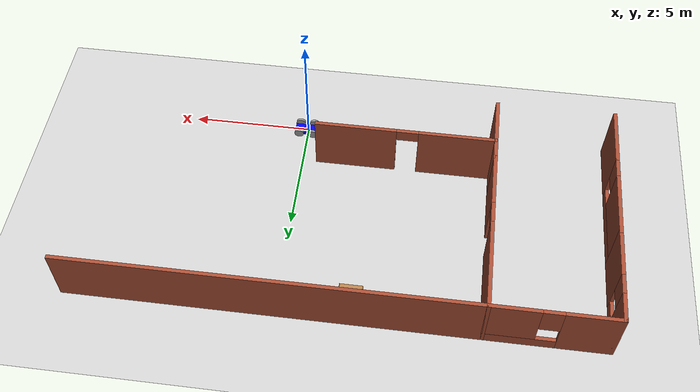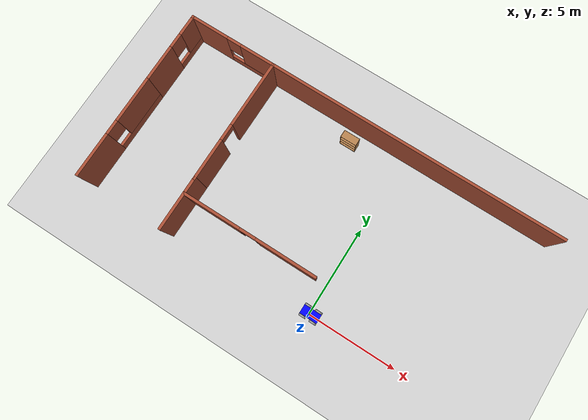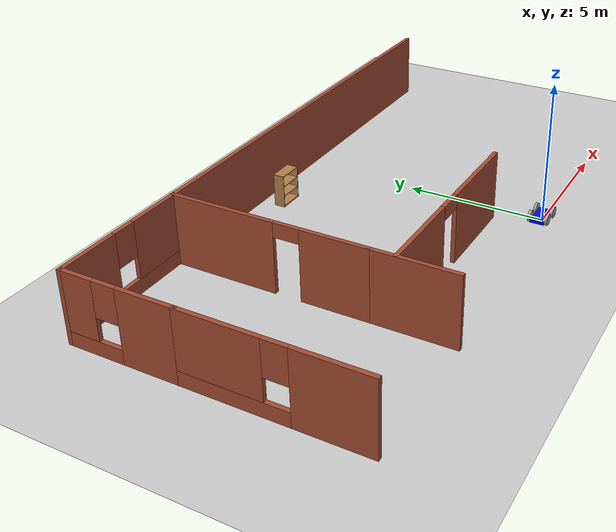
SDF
<sdf version="1.6">
 <world name="default">
  <model name="ground_plane">
   <static>1</static>
   <link name="link">
    <collision name="collision">
     <geometry><plane><normal>0 0 1</normal><size>100 100</size></plane></geometry>
     <surface>
      <contact><collide_bitmask>65535</collide_bitmask></contact>
      <friction><ode><mu>100</mu><mu2>50</mu2></ode></friction>
     </surface>
    </collision>
    <visual name="visual">
     <cast_shadows>0</cast_shadows>
     <geometry><plane><normal>0 0 1</normal><size>100 100</size></plane></geometry>
     <material>
      <script><uri>file://media/materials/scripts/gazebo.material</uri><name>Gazebo/Grey</name></script>
     </material>
    </visual>
   </link>
  </model>
  <model name="office">
   <pose>2.35048 -0.469027 0 0 -0 0</pose>
   <link name="Wall_0">
    <pose>-12.8016 9.8293 0 0 -0 1.2e-05</pose>
    <visual name="Wall_0_Visual_0">
     <pose>-1.40419 0 1.25 0 -0 0</pose>
     <geometry><box><size>2.19162 0.15 2.5</size></box></geometry>
     <material>
      <script><uri>file://media/materials/scripts/gazebo.material</uri><name>Gazebo/Bricks</name></script>
      <ambient>1 1 1 1</ambient>
     </material>
     <meta><layer>0</layer></meta>
    </visual>
    <collision name="Wall_0_Collision_0">
     <geometry><box><size>2.19162 0.15 2.5</size></box></geometry>
     <pose>-1.40419 0 1.25 0 -0 0</pose>
    </collision>
    <visual name="Wall_0_Visual_1">
     <pose>1.09581 0 0.25 0 -0 0</pose>
     <geometry><box><size>2.80838 0.15 0.5</size></box></geometry>
     <material>
      <script><uri>file://media/materials/scripts/gazebo.material</uri><name>Gazebo/Bricks</name></script>
      <ambient>1 1 1 1</ambient>
     </material>
     <meta><layer>0</layer></meta>
    </visual>
    <collision name="Wall_0_Collision_1">
     <geometry><box><size>2.80838 0.15 0.5</size></box></geometry>
     <pose>1.09581 0 0.25 0 -0 0</pose>
    </collision>
    <visual name="Wall_0_Visual_2">
     <pose>1.49581 0 1.5 0 -0 0</pose>
     <geometry><box><size>2.00839 0.15 2</size></box></geometry>
     <material>
      <script><uri>file://media/materials/scripts/gazebo.material</uri><name>Gazebo/Bricks</name></script>
      <ambient>1 1 1 1</ambient>
     </material>
     <meta><layer>0</layer></meta>
    </visual>
    <collision name="Wall_0_Collision_2">
     <geometry><box><size>2.00839 0.15 2</size></box></geometry>
     <pose>1.49581 0 1.5 0 -0 0</pose>
    </collision>
    <visual name="Wall_0_Visual_3">
     <pose>0.091615 0 1.9 0 -0 0</pose>
     <geometry><box><size>0.8 0.15 1.2</size></box></geometry>
     <material>
      <script><uri>file://media/materials/scripts/gazebo.material</uri><name>Gazebo/Bricks</name></script>
      <ambient>1 1 1 1</ambient>
     </material>
     <meta><layer>0</layer></meta>
    </visual>
    <collision name="Wall_0_Collision_3">
     <geometry><box><size>0.8 0.15 1.2</size></box></geometry>
     <pose>0.091615 0 1.9 0 -0 0</pose>
    </collision>
   </link>
   <link name="Wall_1">
    <pose>-10.3767 6.40433 0 0 0 -1.5708</pose>
    <visual name="Wall_1_Visual_0">
     <pose>-1.61827 0 1.25 0 -0 0</pose>
     <geometry><box><size>3.76346 0.15 2.5</size></box></geometry>
     <material>
      <script><uri>file://media/materials/scripts/gazebo.material</uri><name>Gazebo/Bricks</name></script>
      <ambient>0 0 1 1</ambient>
     </material>
     <meta><layer>0</layer></meta>
    </visual>
    <collision name="Wall_1_Collision_0">
     <geometry><box><size>3.76346 0.15 2.5</size></box></geometry>
     <pose>-1.61827 0 1.25 0 -0 0</pose>
    </collision>
    <visual name="Wall_1_Visual_1">
     <pose>2.33173 0 1.25 0 -0 0</pose>
     <geometry><box><size>2.33654 0.15 2.5</size></box></geometry>
     <material>
      <script><uri>file://media/materials/scripts/gazebo.material</uri><name>Gazebo/Bricks</name></script>
      <ambient>0 0 1 1</ambient>
     </material>
     <meta><layer>0</layer></meta>
    </visual>
    <collision name="Wall_1_Collision_1">
     <geometry><box><size>2.33654 0.15 2.5</size></box></geometry>
     <pose>2.33173 0 1.25 0 -0 0</pose>
    </collision>
    <visual name="Wall_1_Visual_2">
     <pose>0.713457 0 2.25 0 -0 0</pose>
     <geometry><box><size>0.9 0.15 0.5</size></box></geometry>
     <material>
      <script><uri>file://media/materials/scripts/gazebo.material</uri><name>Gazebo/Bricks</name></script>
      <ambient>0 0 1 1</ambient>
     </material>
     <meta><layer>0</layer></meta>
    </visual>
    <collision name="Wall_1_Collision_2">
     <geometry><box><size>0.9 0.15 0.5</size></box></geometry>
     <pose>0.713457 0 2.25 0 -0 0</pose>
    </collision>
   </link>
   <link name="Wall_12">
    <pose>-6.67828 2.11448 0 0 -0 3.14159</pose>
    <visual name="Wall_12_Visual_0">
     <pose>-2.05802 0 1.25 0 -0 0</pose>
     <geometry><box><size>3.38397 0.15 2.5</size></box></geometry>
     <material>
      <script><uri>file://media/materials/scripts/gazebo.material</uri><name>Gazebo/Bricks</name></script>
      <ambient>0 0 1 1</ambient>
     </material>
     <meta><layer>0</layer></meta>
    </visual>
    <collision name="Wall_12_Collision_0">
     <geometry><box><size>3.38397 0.15 2.5</size></box></geometry>
     <pose>-2.05802 0 1.25 0 -0 0</pose>
    </collision>
    <visual name="Wall_12_Visual_1">
     <pose>2.14199 0 1.25 0 -0 0</pose>
     <geometry><box><size>3.21603 0.15 2.5</size></box></geometry>
     <material>
      <script><uri>file://media/materials/scripts/gazebo.material</uri><name>Gazebo/Bricks</name></script>
      <ambient>0 0 1 1</ambient>
     </material>
     <meta><layer>0</layer></meta>
    </visual>
    <collision name="Wall_12_Collision_1">
     <geometry><box><size>3.21603 0.15 2.5</size></box></geometry>
     <pose>2.14199 0 1.25 0 -0 0</pose>
    </collision>
    <visual name="Wall_12_Visual_2">
     <pose>0.083969 0 2.25 0 -0 0</pose>
     <geometry><box><size>0.9 0.15 0.5</size></box></geometry>
     <material>
      <script><uri>file://media/materials/scripts/gazebo.material</uri><name>Gazebo/Bricks</name></script>
      <ambient>0 0 1 1</ambient>
     </material>
     <meta><layer>0</layer></meta>
    </visual>
    <collision name="Wall_12_Collision_2">
     <geometry><box><size>0.9 0.15 0.5</size></box></geometry>
     <pose>0.083969 0 2.25 0 -0 0</pose>
    </collision>
   </link>
   <link name="Wall_14">
    <collision name="Wall_14_Collision">
     <geometry><box><size>16.5 0.15 2.5</size></box></geometry>
     <pose>0 0 1.25 0 -0 0</pose>
    </collision>
    <visual name="Wall_14_Visual">
     <pose>0 0 1.25 0 -0 0</pose>
     <geometry><box><size>16.5 0.15 2.5</size></box></geometry>
     <material>
      <script><uri>file://media/materials/scripts/gazebo.material</uri><name>Gazebo/Bricks</name></script>
      <ambient>1 1 1 1</ambient>
     </material>
     <meta><layer>0</layer></meta>
    </visual>
    <pose>-2.20168 9.82933 0 0 -0 0</pose>
   </link>
   <link name="Wall_2">
    <collision name="Wall_2_Collision">
     <geometry><box><size>3 0.15 2.5</size></box></geometry>
     <pose>0 0 1.25 0 -0 0</pose>
    </collision>
    <visual name="Wall_2_Visual">
     <pose>0 0 1.25 0 -0 0</pose>
     <geometry><box><size>3 0.15 2.5</size></box></geometry>
     <material>
      <script><uri>file://media/materials/scripts/gazebo.material</uri><name>Gazebo/Bricks</name></script>
      <ambient>0 0 1 1</ambient>
     </material>
     <meta><layer>0</layer></meta>
    </visual>
    <pose>-10.3766 1.5543 0 0 0 -1.57073</pose>
   </link>
   <link name="Wall_4">
    <pose>-15.2265 3.05427 0 0 -0 1.5708</pose>
    <visual name="Wall_4_Visual_0">
     <pose>-1.76494 0 1.25 0 -0 0</pose>
     <geometry><box><size>2.47012 0.15 2.5</size></box></geometry>
     <material>
      <script><uri>file://media/materials/scripts/gazebo.material</uri><name>Gazebo/Bricks</name></script>
      <ambient>1 1 1 1</ambient>
     </material>
     <meta><layer>0</layer></meta>
    </visual>
    <collision name="Wall_4_Collision_0">
     <geometry><box><size>2.47012 0.15 2.5</size></box></geometry>
     <pose>-1.76494 0 1.25 0 -0 0</pose>
    </collision>
    <visual name="Wall_4_Visual_1">
     <pose>1.23506 0 0.25 0 -0 0</pose>
     <geometry><box><size>3.52988 0.15 0.5</size></box></geometry>
     <material>
      <script><uri>file://media/materials/scripts/gazebo.material</uri><name>Gazebo/Bricks</name></script>
      <ambient>1 1 1 1</ambient>
     </material>
     <meta><layer>0</layer></meta>
    </visual>
    <collision name="Wall_4_Collision_1">
     <geometry><box><size>3.52988 0.15 0.5</size></box></geometry>
     <pose>1.23506 0 0.25 0 -0 0</pose>
    </collision>
    <visual name="Wall_4_Visual_2">
     <pose>1.63506 0 1.5 0 -0 0</pose>
     <geometry><box><size>2.72988 0.15 2</size></box></geometry>
     <material>
      <script><uri>file://media/materials/scripts/gazebo.material</uri><name>Gazebo/Bricks</name></script>
      <ambient>1 1 1 1</ambient>
     </material>
     <meta><layer>0</layer></meta>
    </visual>
    <collision name="Wall_4_Collision_2">
     <geometry><box><size>2.72988 0.15 2</size></box></geometry>
     <pose>1.63506 0 1.5 0 -0 0</pose>
    </collision>
    <visual name="Wall_4_Visual_3">
     <pose>-0.129878 0 1.9 0 -0 0</pose>
     <geometry><box><size>0.8 0.15 1.2</size></box></geometry>
     <material>
      <script><uri>file://media/materials/scripts/gazebo.material</uri><name>Gazebo/Bricks</name></script>
      <ambient>1 1 1 1</ambient>
     </material>
     <meta><layer>0</layer></meta>
    </visual>
    <collision name="Wall_4_Collision_3">
     <geometry><box><size>0.8 0.15 1.2</size></box></geometry>
     <pose>-0.129878 0 1.9 0 -0 0</pose>
    </collision>
   </link>
   <link name="Wall_5">
    <pose>-15.2265 7.90427 0 0 -0 1.5708</pose>
    <visual name="Wall_5_Visual_0">
     <pose>-1.00332 0 1.25 0 -0 0</pose>
     <geometry><box><size>1.99336 0.15 2.5</size></box></geometry>
     <material>
      <script><uri>file://media/materials/scripts/gazebo.material</uri><name>Gazebo/Bricks</name></script>
      <ambient>1 1 1 1</ambient>
     </material>
     <meta><layer>0</layer></meta>
    </visual>
    <collision name="Wall_5_Collision_0">
     <geometry><box><size>1.99336 0.15 2.5</size></box></geometry>
     <pose>-1.00332 0 1.25 0 -0 0</pose>
    </collision>
    <visual name="Wall_5_Visual_1">
     <pose>0.996681 0 0.25 0 -0 0</pose>
     <geometry><box><size>2.00664 0.15 0.5</size></box></geometry>
     <material>
      <script><uri>file://media/materials/scripts/gazebo.material</uri><name>Gazebo/Bricks</name></script>
      <ambient>1 1 1 1</ambient>
     </material>
     <meta><layer>0</layer></meta>
    </visual>
    <collision name="Wall_5_Collision_1">
     <geometry><box><size>2.00664 0.15 0.5</size></box></geometry>
     <pose>0.996681 0 0.25 0 -0 0</pose>
    </collision>
    <visual name="Wall_5_Visual_2">
     <pose>1.39668 0 1.5 0 -0 0</pose>
     <geometry><box><size>1.20664 0.15 2</size></box></geometry>
     <material>
      <script><uri>file://media/materials/scripts/gazebo.material</uri><name>Gazebo/Bricks</name></script>
      <ambient>1 1 1 1</ambient>
     </material>
     <meta><layer>0</layer></meta>
    </visual>
    <collision name="Wall_5_Collision_2">
     <geometry><box><size>1.20664 0.15 2</size></box></geometry>
     <pose>1.39668 0 1.5 0 -0 0</pose>
    </collision>
    <visual name="Wall_5_Visual_3">
     <pose>0.393363 0 1.9 0 -0 0</pose>
     <geometry><box><size>0.8 0.15 1.2</size></box></geometry>
     <material>
      <script><uri>file://media/materials/scripts/gazebo.material</uri><name>Gazebo/Bricks</name></script>
      <ambient>1 1 1 1</ambient>
     </material>
     <meta><layer>0</layer></meta>
    </visual>
    <collision name="Wall_5_Collision_3">
     <geometry><box><size>0.8 0.15 1.2</size></box></geometry>
     <pose>0.393363 0 1.9 0 -0 0</pose>
    </collision>
   </link>
   <static>1</static>
  </model>
  <model name="4wdamr">
   <link name="link_0">
    <pose>0 0 -0.070646 0 -0 0</pose>
    <inertial>
     <mass>1</mass>
     <inertia>
      <ixx>0.166667</ixx>
      <ixy>0</ixy>
      <ixz>0</ixz>
      <iyy>0.166667</iyy>
      <iyz>0</iyz>
      <izz>0.166667</izz>
     </inertia>
    </inertial>
    <visual name="visual">
     <geometry><box><size>1 0.5 0.1</size></box></geometry>
     <material>
      <lighting>1</lighting>
      <script><uri>file://media/materials/scripts/gazebo.material</uri><name>Gazebo/Grey</name></script>
      <shader type="pixel"><normal_map>__default__</normal_map></shader>
      <ambient>0 0 1 1</ambient>
      <diffuse>0 0 1 1</diffuse>
      <specular>0 0 1 1</specular>
      <emissive>0 0 0 1</emissive>
     </material>
    </visual>
    <collision name="collision">
     <geometry><box><size>1 0.5 0.1</size></box></geometry>
     <surface>
      <friction>
       <ode><mu>1</mu><mu2>1</mu2><fdir1>0 0 0</fdir1><slip1>0</slip1><slip2>0</slip2></ode>
       <torsional>
        <coefficient>1</coefficient>
        <patch_radius>0</patch_radius>
        <surface_radius>0</surface_radius>
        <use_patch_radius>1</use_patch_radius>
        <ode><slip>0</slip></ode>
       </torsional>
      </friction>
      <bounce><restitution_coefficient>0</restitution_coefficient><threshold>1e+06</threshold></bounce>
      <contact>
       <collide_without_contact>0</collide_without_contact>
       <collide_without_contact_bitmask>1</collide_without_contact_bitmask>
       <collide_bitmask>1</collide_bitmask>
       <ode>
        <soft_cfm>0</soft_cfm>
        <soft_erp>0.2</soft_erp>
        <kp>1e+13</kp>
        <kd>1</kd>
        <max_vel>0.01</max_vel>
        <min_depth>0</min_depth>
       </ode>
       <bullet>
        <split_impulse>1</split_impulse>
        <split_impulse_penetration_threshold>-0.01</split_impulse_penetration_threshold>
        <soft_cfm>0</soft_cfm>
        <soft_erp>0.2</soft_erp>
        <kp>1e+13</kp>
        <kd>1</kd>
       </bullet>
      </contact>
     </surface>
    </collision>
   </link>
   <link name="link_1">
    <pose>-0.3 -0.300001 0.017662 1.5708 -0 0</pose>
    <inertial>
     <mass>1</mass>
     <inertia><ixx>0.145833</ixx><ixy>0</ixy><ixz>0</ixz><iyy>0.145833</iyy><iyz>0</iyz><izz>0.125</izz></inertia>
    </inertial>
    <visual name="visual">
     <geometry><cylinder><radius>0.2</radius><length>0.1</length></cylinder></geometry>
     <material>
      <lighting>1</lighting>
      <script><uri>file://media/materials/scripts/gazebo.material</uri><name>Gazebo/Grey</name></script>
      <shader type="pixel"><normal_map>__default__</normal_map></shader>
      <ambient>0 0 0 1</ambient>
      <diffuse>0 0 0 1</diffuse>
      <specular>0 0 0 1</specular>
      <emissive>0 0 0 1</emissive>
     </material>
    </visual>
    <collision name="collision">
     <geometry><cylinder><radius>0.2</radius><length>0.1</length></cylinder></geometry>
     <surface>
      <friction>
       <ode><mu>1</mu><mu2>1</mu2><fdir1>0 0 0</fdir1><slip1>0</slip1><slip2>0</slip2></ode>
       <torsional>
        <coefficient>1</coefficient>
        <patch_radius>0</patch_radius>
        <surface_radius>0</surface_radius>
        <use_patch_radius>1</use_patch_radius>
        <ode><slip>0</slip></ode>
       </torsional>
      </friction>
      <bounce><restitution_coefficient>0</restitution_coefficient><threshold>1e+06</threshold></bounce>
      <contact>
       <collide_without_contact>0</collide_without_contact>
       <collide_without_contact_bitmask>1</collide_without_contact_bitmask>
       <collide_bitmask>1</collide_bitmask>
       <ode>
        <soft_cfm>0</soft_cfm>
        <soft_erp>0.2</soft_erp>
        <kp>1e+13</kp>
        <kd>1</kd>
        <max_vel>0.01</max_vel>
        <min_depth>0</min_depth>
       </ode>
       <bullet>
        <split_impulse>1</split_impulse>
        <split_impulse_penetration_threshold>-0.01</split_impulse_penetration_threshold>
        <soft_cfm>0</soft_cfm>
        <soft_erp>0.2</soft_erp>
        <kp>1e+13</kp>
        <kd>1</kd>
       </bullet>
      </contact>
     </surface>
    </collision>
   </link>
   <link name="link_1_clone">
    <pose>0.3 -0.300001 0.017661 1.5708 -0 0</pose>
    <inertial>
     <mass>1</mass>
     <inertia><ixx>0.145833</ixx><ixy>0</ixy><ixz>0</ixz><iyy>0.145833</iyy><iyz>0</iyz><izz>0.125</izz></inertia>
    </inertial>
    <visual name="visual">
     <geometry><cylinder><radius>0.2</radius><length>0.1</length></cylinder></geometry>
     <material>
      <lighting>1</lighting>
      <script><uri>file://media/materials/scripts/gazebo.material</uri><name>Gazebo/Grey</name></script>
      <shader type="pixel"><normal_map>__default__</normal_map></shader>
      <ambient>0 0 0 1</ambient>
      <diffuse>0 0 0 1</diffuse>
      <specular>0 0 0 1</specular>
      <emissive>0 0 0 1</emissive>
     </material>
    </visual>
    <collision name="collision">
     <geometry><cylinder><radius>0.2</radius><length>0.1</length></cylinder></geometry>
     <surface>
      <friction>
       <ode><mu>1</mu><mu2>1</mu2><fdir1>0 0 0</fdir1><slip1>0</slip1><slip2>0</slip2></ode>
       <torsional>
        <coefficient>1</coefficient>
        <patch_radius>0</patch_radius>
        <surface_radius>0</surface_radius>
        <use_patch_radius>1</use_patch_radius>
        <ode><slip>0</slip></ode>
       </torsional>
      </friction>
      <bounce><restitution_coefficient>0</restitution_coefficient><threshold>1e+06</threshold></bounce>
      <contact>
       <collide_without_contact>0</collide_without_contact>
       <collide_without_contact_bitmask>1</collide_without_contact_bitmask>
       <collide_bitmask>1</collide_bitmask>
       <ode>
        <soft_cfm>0</soft_cfm>
        <soft_erp>0.2</soft_erp>
        <kp>1e+13</kp>
        <kd>1</kd>
        <max_vel>0.01</max_vel>
        <min_depth>0</min_depth>
       </ode>
       <bullet>
        <split_impulse>1</split_impulse>
        <split_impulse_penetration_threshold>-0.01</split_impulse_penetration_threshold>
        <soft_cfm>0</soft_cfm>
        <soft_erp>0.2</soft_erp>
        <kp>1e+13</kp>
        <kd>1</kd>
       </bullet>
      </contact>
     </surface>
    </collision>
   </link>
   <link name="link_1_clone_0">
    <pose>-0.3 0.300001 0.017661 1.5708 -0 0</pose>
    <inertial>
     <mass>1</mass>
     <inertia><ixx>0.145833</ixx><ixy>0</ixy><ixz>0</ixz><iyy>0.145833</iyy><iyz>0</iyz><izz>0.125</izz></inertia>
    </inertial>
    <visual name="visual">
     <geometry><cylinder><radius>0.2</radius><length>0.1</length></cylinder></geometry>
     <material>
      <lighting>1</lighting>
      <script><uri>file://media/materials/scripts/gazebo.material</uri><name>Gazebo/Grey</name></script>
      <shader type="pixel"><normal_map>__default__</normal_map></shader>
      <ambient>0 0 0 1</ambient>
      <diffuse>0 0 0 1</diffuse>
      <specular>0 0 0 1</specular>
      <emissive>0 0 0 1</emissive>
     </material>
    </visual>
    <collision name="collision">
     <geometry><cylinder><radius>0.2</radius><length>0.1</length></cylinder></geometry>
     <surface>
      <friction>
       <ode><mu>1</mu><mu2>1</mu2><fdir1>0 0 0</fdir1><slip1>0</slip1><slip2>0</slip2></ode>
       <torsional>
        <coefficient>1</coefficient>
        <patch_radius>0</patch_radius>
        <surface_radius>0</surface_radius>
        <use_patch_radius>1</use_patch_radius>
        <ode><slip>0</slip></ode>
       </torsional>
      </friction>
      <bounce><restitution_coefficient>0</restitution_coefficient><threshold>1e+06</threshold></bounce>
      <contact>
       <collide_without_contact>0</collide_without_contact>
       <collide_without_contact_bitmask>1</collide_without_contact_bitmask>
       <collide_bitmask>1</collide_bitmask>
       <ode>
        <soft_cfm>0</soft_cfm>
        <soft_erp>0.2</soft_erp>
        <kp>1e+13</kp>
        <kd>1</kd>
        <max_vel>0.01</max_vel>
        <min_depth>0</min_depth>
       </ode>
       <bullet>
        <split_impulse>1</split_impulse>
        <split_impulse_penetration_threshold>-0.01</split_impulse_penetration_threshold>
        <soft_cfm>0</soft_cfm>
        <soft_erp>0.2</soft_erp>
        <kp>1e+13</kp>
        <kd>1</kd>
       </bullet>
      </contact>
     </surface>
    </collision>
   </link>
   <link name="link_1_clone_1">
    <pose>0.3 0.300001 0.017661 1.5708 -0 0</pose>
    <inertial>
     <mass>1</mass>
     <inertia><ixx>0.145833</ixx><ixy>0</ixy><ixz>0</ixz><iyy>0.145833</iyy><iyz>0</iyz><izz>0.125</izz></inertia>
    </inertial>
    <visual name="visual">
     <geometry><cylinder><radius>0.2</radius><length>0.1</length></cylinder></geometry>
     <material>
      <lighting>1</lighting>
      <script><uri>file://media/materials/scripts/gazebo.material</uri><name>Gazebo/Grey</name></script>
      <shader type="pixel"><normal_map>__default__</normal_map></shader>
      <ambient>0 0 0 1</ambient>
      <diffuse>0 0 0 1</diffuse>
      <specular>0 0 0 1</specular>
      <emissive>0 0 0 1</emissive>
     </material>
    </visual>
    <collision name="collision">
     <geometry><cylinder><radius>0.2</radius><length>0.1</length></cylinder></geometry>
     <surface>
      <friction>
       <ode><mu>1</mu><mu2>1</mu2><fdir1>0 0 0</fdir1><slip1>0</slip1><slip2>0</slip2></ode>
       <torsional>
        <coefficient>1</coefficient>
        <patch_radius>0</patch_radius>
        <surface_radius>0</surface_radius>
        <use_patch_radius>1</use_patch_radius>
        <ode><slip>0</slip></ode>
       </torsional>
      </friction>
      <bounce><restitution_coefficient>0</restitution_coefficient><threshold>1e+06</threshold></bounce>
      <contact>
       <collide_without_contact>0</collide_without_contact>
       <collide_without_contact_bitmask>1</collide_without_contact_bitmask>
       <collide_bitmask>1</collide_bitmask>
       <ode>
        <soft_cfm>0</soft_cfm>
        <soft_erp>0.2</soft_erp>
        <kp>1e+13</kp>
        <kd>1</kd>
        <max_vel>0.01</max_vel>
        <min_depth>0</min_depth>
       </ode>
       <bullet>
        <split_impulse>1</split_impulse>
        <split_impulse_penetration_threshold>-0.01</split_impulse_penetration_threshold>
        <soft_cfm>0</soft_cfm>
        <soft_erp>0.2</soft_erp>
        <kp>1e+13</kp>
        <kd>1</kd>
       </bullet>
      </contact>
     </surface>
    </collision>
   </link>
   <joint name="link_0_JOINT_0" type="revolute">
    <parent>link_0</parent>
    <child>link_1</child>
    <axis>
     <xyz>0 0 1</xyz>
     <use_parent_model_frame>0</use_parent_model_frame>
     <limit>
      <lower>-1.79769e+308</lower>
      <upper>1.79769e+308</upper>
      <effort>-1</effort>
      <velocity>-1</velocity>
     </limit>
     <dynamics>
      <spring_reference>0</spring_reference>
      <spring_stiffness>0</spring_stiffness>
      <damping>0</damping>
     </dynamics>
    </axis>
    <physics>
     <ode><limit><cfm>0</cfm><erp>0.2</erp></limit><suspension><cfm>0</cfm><erp>0.2</erp></suspension></ode>
    </physics>
   </joint>
   <joint name="link_0_JOINT_1" type="revolute">
    <parent>link_0</parent>
    <child>link_1_clone_0</child>
    <axis>
     <xyz>0 0 1</xyz>
     <use_parent_model_frame>0</use_parent_model_frame>
     <limit>
      <lower>-1.79769e+308</lower>
      <upper>1.79769e+308</upper>
      <effort>-1</effort>
      <velocity>-1</velocity>
     </limit>
     <dynamics>
      <spring_reference>0</spring_reference>
      <spring_stiffness>0</spring_stiffness>
      <damping>0</damping>
     </dynamics>
    </axis>
    <physics>
     <ode><limit><cfm>0</cfm><erp>0.2</erp></limit><suspension><cfm>0</cfm><erp>0.2</erp></suspension></ode>
    </physics>
   </joint>
   <joint name="link_0_JOINT_2" type="revolute">
    <parent>link_0</parent>
    <child>link_1_clone</child>
    <axis>
     <xyz>0 0 1</xyz>
     <use_parent_model_frame>0</use_parent_model_frame>
     <limit>
      <lower>-1.79769e+308</lower>
      <upper>1.79769e+308</upper>
      <effort>-1</effort>
      <velocity>-1</velocity>
     </limit>
     <dynamics>
      <spring_reference>0</spring_reference>
      <spring_stiffness>0</spring_stiffness>
      <damping>0</damping>
     </dynamics>
    </axis>
    <physics>
     <ode><limit><cfm>0</cfm><erp>0.2</erp></limit><suspension><cfm>0</cfm><erp>0.2</erp></suspension></ode>
    </physics>
   </joint>
   <joint name="link_0_JOINT_3" type="revolute">
    <parent>link_0</parent>
    <child>link_1_clone_1</child>
    <axis>
     <xyz>0 0 1</xyz>
     <use_parent_model_frame>0</use_parent_model_frame>
     <limit>
      <lower>-1.79769e+308</lower>
      <upper>1.79769e+308</upper>
      <effort>-1</effort>
      <velocity>-1</velocity>
     </limit>
     <dynamics>
      <spring_reference>0</spring_reference>
      <spring_stiffness>0</spring_stiffness>
      <damping>0</damping>
     </dynamics>
    </axis>
    <physics>
     <ode><limit><cfm>0</cfm><erp>0.2</erp></limit><suspension><cfm>0</cfm><erp>0.2</erp></suspension></ode>
    </physics>
   </joint>
   <static>0</static>
   <pose>0.071685 0.064507 0.182338 3e-06 -0 -0.002696</pose>
  </model>
  <model name="bookshelf_0">
   <static>1</static>
   <link name="link">
    <inertial><mass>1</mass></inertial>
    <collision name="back">
     <pose>0 0.005 0.6 0 -0 0</pose>
     <geometry><box><size>0.9 0.01 1.2</size></box></geometry>
    </collision>
    <visual name="visual1">
     <pose>0 0.005 0.6 0 -0 0</pose>
     <geometry><box><size>0.9 0.01 1.2</size></box></geometry>
     <material>
      <script><uri>file://media/materials/scripts/gazebo.material</uri><name>Gazebo/Wood</name></script>
     </material>
    </visual>
    <collision name="left_side">
     <pose>0.45 -0.195 0.6 0 -0 0</pose>
     <geometry><box><size>0.02 0.4 1.2</size></box></geometry>
    </collision>
    <visual name="visual2">
     <pose>0.45 -0.195 0.6 0 -0 0</pose>
     <geometry><box><size>0.02 0.4 1.2</size></box></geometry>
     <material>
      <script><uri>file://media/materials/scripts/gazebo.material</uri><name>Gazebo/Wood</name></script>
     </material>
    </visual>
    <collision name="right_side">
     <pose>-0.45 -0.195 0.6 0 -0 0</pose>
     <geometry><box><size>0.02 0.4 1.2</size></box></geometry>
    </collision>
    <visual name="visual3">
     <pose>-0.45 -0.195 0.6 0 -0 0</pose>
     <geometry><box><size>0.02 0.4 1.2</size></box></geometry>
     <material>
      <script><uri>file://media/materials/scripts/gazebo.material</uri><name>Gazebo/Wood</name></script>
     </material>
    </visual>
    <collision name="bottom">
     <pose>0 -0.195 0.03 0 -0 0</pose>
     <geometry><box><size>0.88 0.4 0.06</size></box></geometry>
    </collision>
    <visual name="visual4">
     <pose>0 -0.195 0.03 0 -0 0</pose>
     <geometry><box><size>0.88 0.4 0.06</size></box></geometry>
     <material>
      <script><uri>file://media/materials/scripts/gazebo.material</uri><name>Gazebo/Wood</name></script>
     </material>
    </visual>
    <collision name="top">
     <pose>0 -0.195 1.19 0 -0 0</pose>
     <geometry><box><size>0.88 0.4 0.02</size></box></geometry>
    </collision>
    <visual name="visual5">
     <pose>0 -0.195 1.19 0 -0 0</pose>
     <geometry><box><size>0.88 0.4 0.02</size></box></geometry>
     <material>
      <script><uri>file://media/materials/scripts/gazebo.material</uri><name>Gazebo/Wood</name></script>
     </material>
    </visual>
    <collision name="low_shelf">
     <pose>0 -0.195 0.43 0 -0 0</pose>
     <geometry><box><size>0.88 0.4 0.02</size></box></geometry>
    </collision>
    <visual name="visual6">
     <pose>0 -0.195 0.43 0 -0 0</pose>
     <geometry><box><size>0.88 0.4 0.02</size></box></geometry>
     <material>
      <script><uri>file://media/materials/scripts/gazebo.material</uri><name>Gazebo/Wood</name></script>
     </material>
    </visual>
    <collision name="high_shelf">
     <pose>0 -0.195 0.8 0 -0 0</pose>
     <geometry><box><size>0.88 0.4 0.02</size></box></geometry>
    </collision>
    <visual name="visual7">
     <pose>0 -0.195 0.8 0 -0 0</pose>
     <geometry><box><size>0.88 0.4 0.02</size></box></geometry>
     <material>
      <script><uri>file://media/materials/scripts/gazebo.material</uri><name>Gazebo/Wood</name></script>
     </material>
    </visual>
   </link>
   <pose>-2.92904 8.76243 0 0 -0 0</pose>
  </model>
 </world>
</sdf>
